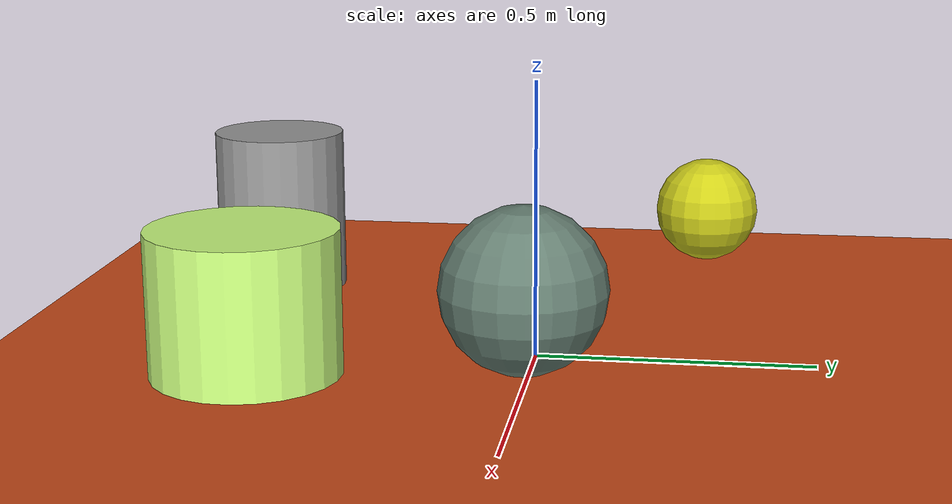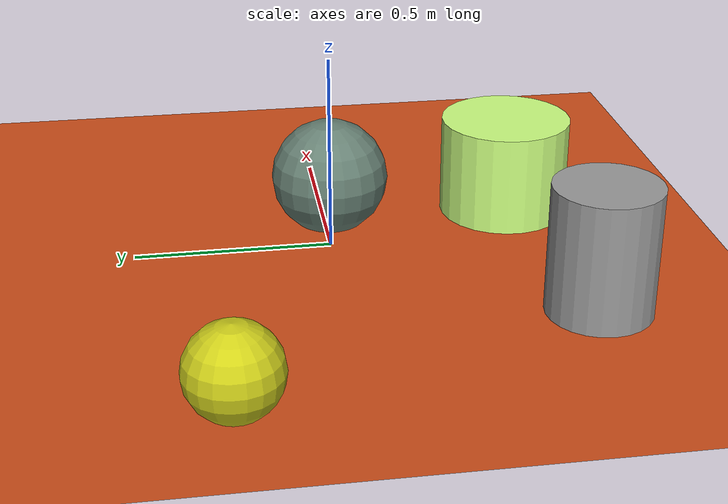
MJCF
<mujoco>
   <asset>
<texture type="skybox" builtin="gradient" rgb1="0.2 0.4 1.0" rgb2="0.0 0.5 0.7" width="256" height="256"/>
<texture name="flat_0" builtin="flat" rgb1="0.8 1.0 0.5" rgb2="0.8 1.0 0.5"  width="200" height="200"/>
<texture name="gradient_1" builtin="gradient" rgb1="0.5 0.3 0.8" rgb2="0.7 0.9 0.4" width="200" height="200"/>
<texture name="flat_2" builtin="flat" rgb1="0.8 0.8 0.1" rgb2="0.8 0.8 0.1"  width="200" height="200"/>
<texture name="gradient_3" builtin="gradient" rgb1="0.5 0.7 0.6" rgb2="0.3 0.3 0.3" width="200" height="200"/><material name="flat_0_mat" reflectance="0" texture="flat_0" texuniform="true"/>
<material name="gradient_1_mat" reflectance="0" texture="gradient_1" texuniform="true"/>
<material name="flat_2_mat" reflectance="0" texture="flat_2" texuniform="true"/>
<material name="gradient_3_mat" reflectance="0" texture="gradient_3" texuniform="true"/>
   </asset>

   <worldbody>
      <light diffuse=".9 .9 .9" pos="0 0 3" dir="0 0 -1"/>
     <geom type="plane" size="1 1 0.1" rgba="0.8 0.3 0.1 1"/>
<geom type="cylinder" pos="0.16 -0.49 0.13" size="0.17 0.13 0.13" material="flat_0_mat" euler="0 0 21" />
<geom type="cylinder" pos="-0.43 -0.58 0.16" size="0.13 0.16 0.16" material="gradient_1_mat" euler="0 0 75" />
<geom type="sphere" pos="-0.75 0.29 0.11" size="0.11 0.11 0.11" material="flat_2_mat" euler="0 0 83" />
<geom type="sphere" pos="0.1 -0.01 0.15" size="0.15 0.15 0.15" material="gradient_3_mat" euler="0 0 62" /><camera euler="60 0 180" fovy="60" name="camera1" pos="-0.2 -1.5 1"></camera>   </worldbody>
</mujoco>
